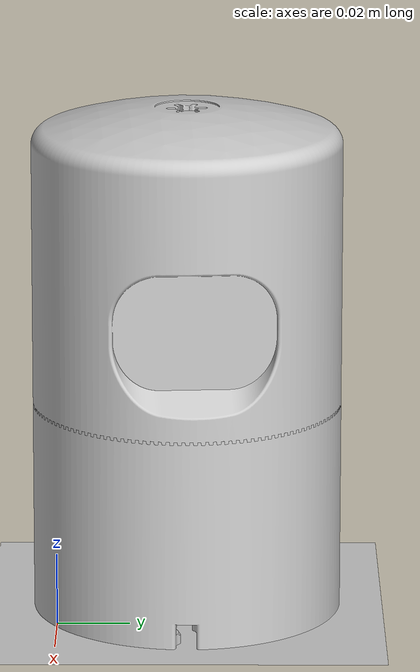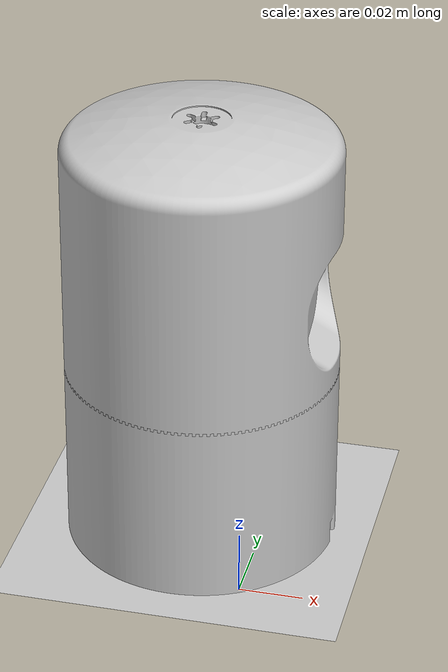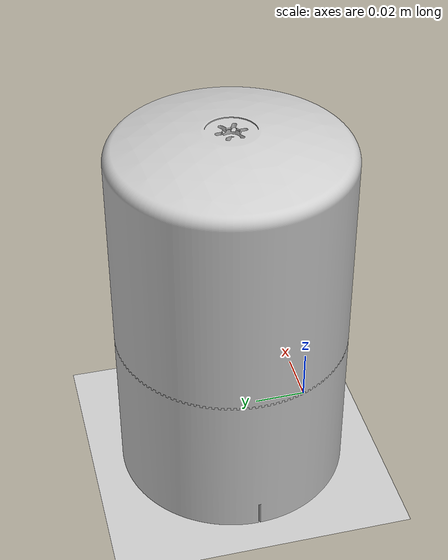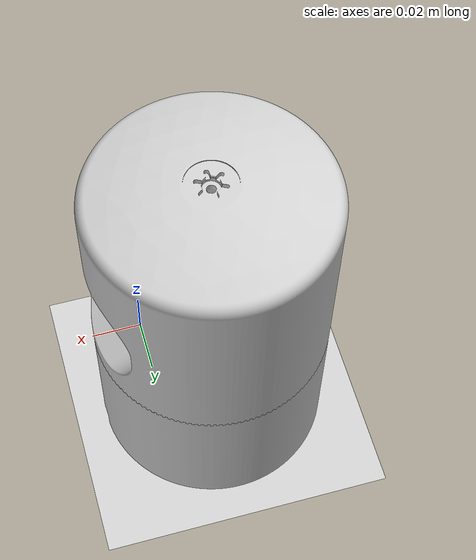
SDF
<sdf version="1.6">
 <world name="default">
  <light name="sun" type="directional">
   <pose>0 0 10 0 -0 0</pose>
   <diffuse>0.8 0.8 0.8 1</diffuse>
   <specular>0.2 0.2 0.2 1</specular>
   <attenuation>
    <range>1000</range>
    <constant>0.9</constant>
    <linear>0.01</linear>
    <quadratic>0.001</quadratic>
   </attenuation>
   <direction>-0.5 0.1 -0.9</direction>
  </light>
  <model name="ground_plane">
   <static>1</static>
   <link name="link">
    <collision name="collision">
     <geometry><plane><normal>0 0 1</normal><size>100 100</size></plane></geometry>
     <surface>
      <contact><collide_bitmask>65535</collide_bitmask></contact>
      <friction><ode><mu>100</mu><mu2>50</mu2></ode></friction>
     </surface>
    </collision>
    <visual name="visual">
     <cast_shadows>0</cast_shadows>
     <geometry><plane><normal>0 0 1</normal><size>100 100</size></plane></geometry>
     <material>
      <script><uri>file://media/materials/scripts/gazebo.material</uri><name>Gazebo/Grey</name></script>
     </material>
    </visual>
   </link>
  </model>
  <gravity>0 0 -9.8</gravity>
  <magnetic_field>6e-06 2.3e-05 -4.2e-05</magnetic_field>
  <atmosphere type="adiabatic"/>
  <physics name="default_physics" default="0" type="ode">
   <max_step_size>0.001</max_step_size>
   <real_time_factor>1</real_time_factor>
   <real_time_update_rate>1000</real_time_update_rate>
  </physics>
  <scene><ambient>0.4 0.4 0.4 1</ambient><background>0.7 0.7 0.7 1</background><shadows>1</shadows></scene>
  <audio><device>default</device></audio>
  <spherical_coordinates>
   <surface_model>EARTH_WGS84</surface_model>
   <latitude_deg>0</latitude_deg>
   <longitude_deg>0</longitude_deg>
   <elevation>0</elevation>
   <heading_deg>0</heading_deg>
  </spherical_coordinates>
  <model name="velodyne">
   <link name="base">
    <pose>0 0 0.029335 0 -0 0</pose>
    <inertial>
     <mass>1.2</mass>
     <inertia>
      <ixx>0.00108747</ixx>
      <iyy>0.00108747</iyy>
      <izz>0.00109244</izz>
      <ixy>0</ixy>
      <ixz>0</ixz>
      <iyz>0</iyz>
     </inertia>
    </inertial>
    <collision name="base_collision">
     <geometry><cylinder><radius>0.04267</radius><length>0.05867</length></cylinder></geometry>
    </collision>
    <visual name="base_visual">
     <pose>0 0 -0.029335 0 -0 0</pose>
     <geometry><mesh><uri>model://velodyne_hdl32/meshes/velodyne_base.dae</uri></mesh></geometry>
    </visual>
   </link>
   <link name="top">
    <pose>0 0 0.095455 0 -0 0</pose>
    <inertial>
     <mass>0.1</mass>
     <inertia>
      <ixx>9.0623e-05</ixx>
      <iyy>9.0623e-05</iyy>
      <izz>9.1036e-05</izz>
      <ixy>0</ixy>
      <ixz>0</ixz>
      <iyz>0</iyz>
     </inertia>
    </inertial>
    <collision name="top_collision">
     <geometry><cylinder><radius>0.04267</radius><length>0.07357</length></cylinder></geometry>
    </collision>
    <visual name="top_visual">
     <pose>0 0 -0.037679 0 -0 1.5707</pose>
     <geometry><mesh><uri>model://velodyne_hdl32/meshes/velodyne_top.dae</uri></mesh></geometry>
    </visual>
    <sensor name="sensor" type="ray">
     <pose>0 0 -0.004645 1.5707 -0 0</pose>
     <visualize>1</visualize>
     <update_rate>30</update_rate>
     <ray>
      <noise><type>gaussian</type><mean>0</mean><stddev>0.1</stddev></noise>
      <scan>
       <horizontal>
        <samples>32</samples>
        <resolution>1</resolution>
        <min_angle>-0.535292</min_angle>
        <max_angle>0.186227</max_angle>
       </horizontal>
       <vertical><samples>1</samples><min_angle>0</min_angle><max_angle>0</max_angle></vertical>
      </scan>
      <range><min>0.1</min><max>70</max><resolution>0.02</resolution></range>
     </ray>
    </sensor>
   </link>
   <joint name="joint" type="revolute">
    <pose>0 0 -0.036785 0 -0 0</pose>
    <parent>base</parent>
    <child>top</child>
    <axis>
     <xyz>0 0 1</xyz>
     <limit><lower>-1e+16</lower><upper>1e+16</upper></limit>
     <use_parent_model_frame>0</use_parent_model_frame>
     <dynamics><spring_reference>0</spring_reference><spring_stiffness>0</spring_stiffness></dynamics>
    </axis>
   </joint>
   <pose>-0.020416 0.035669 -9e-06 -2e-06 -7e-06 0</pose>
  </model>
 </world>
</sdf>
